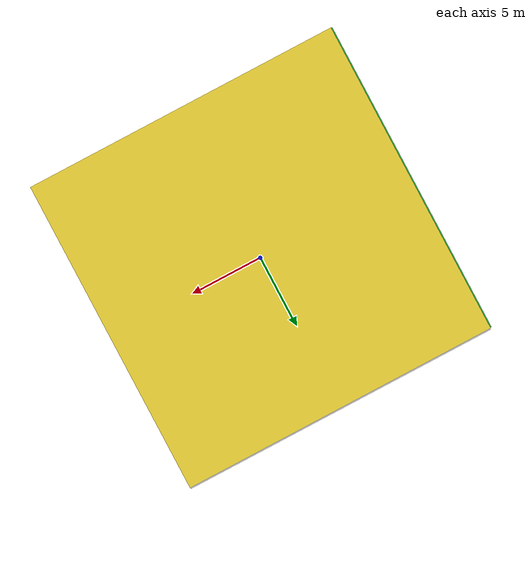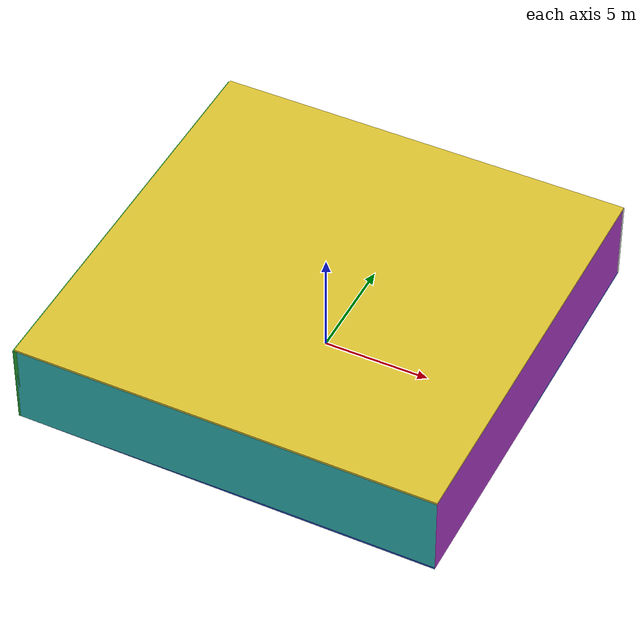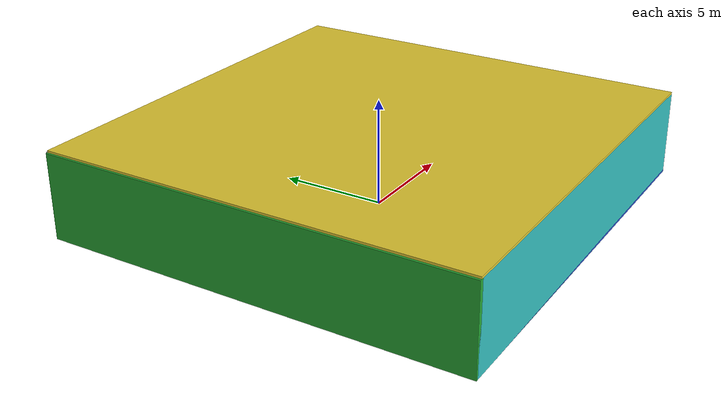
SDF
<sdf version="1.4">
 <world name="default">
  <physics type="ode">
   <max_step_size>0.001</max_step_size>
   <real_time_factor>1</real_time_factor>
   <real_time_update_rate>1000</real_time_update_rate>
   <gravity>0 0 -9.8</gravity>
  </physics>
  <scene><ambient>0.4 0.4 0.4 1</ambient><background>0.7 0.7 0.7 1</background><shadows>1</shadows></scene>
  <model name="Surrounding">
   <static>1</static>
   <link name="Ceiling">
    <collision name="Ceiling_Collision"><geometry><box><size>20 20 0.1</size></box></geometry></collision>
    <visual name="Ceiling_Visual">
     <geometry><box><size>20 20 0.1</size></box></geometry>
     <material>
      <script><uri>file://media/materials/scripts/gazebo.material</uri><name>Gazebo/ZincYellow</name></script>
     </material>
    </visual>
    <pose>0 0 4.05 0 0 0</pose>
   </link>
   <link name="Wall_South">
    <collision name="Wall_South_Collision">
     <geometry><box><size>20 0 4</size></box></geometry>
     <pose>0 0 2 0 -0 0</pose>
    </collision>
    <visual name="Wall_South_Visual">
     <pose>0 0 2 0 -0 0</pose>
     <geometry><box><size>20 0 4</size></box></geometry>
     <material>
      <script>
       <uri>file://media/materials/scripts/gazebo.material</uri>
       <name>Gazebo/TurquoiseGlowOutline</name>
      </script>
     </material>
    </visual>
    <velocity_decay><linear>0</linear><angular>0</angular></velocity_decay>
    <pose>0 -10 0 0 -0 0</pose>
   </link>
   <link name="Wall_East">
    <collision name="Wall_21_Collision">
     <geometry><box><size>20 0 4</size></box></geometry>
     <pose>0 0 2 0 -0 0</pose>
    </collision>
    <visual name="Wall_21_Visual">
     <pose>0 0 2 0 -0 0</pose>
     <geometry><box><size>20 0 4</size></box></geometry>
     <material>
      <script><uri>file://media/materials/scripts/gazebo.material</uri><name>Gazebo/PurpleGlow</name></script>
     </material>
    </visual>
    <velocity_decay><linear>0</linear><angular>0</angular></velocity_decay>
    <pose>10 0 0 0 -0 1.5708</pose>
   </link>
   <link name="Wall_North">
    <collision name="Wall_22_Collision">
     <geometry><box><size>20 0.2 4</size></box></geometry>
     <pose>0 0 2 0 -0 0</pose>
    </collision>
    <visual name="Wall_22_Visual">
     <pose>0 0 2 0 -0 0</pose>
     <geometry><box><size>20 0.2 4</size></box></geometry>
     <material>
      <script><uri>file://media/materials/scripts/gazebo.material</uri><name>Gazebo/LightOn</name></script>
     </material>
    </visual>
    <velocity_decay><linear>0</linear><angular>0</angular></velocity_decay>
    <pose>0 10 0 0 -0 0</pose>
   </link>
   <link name="Wall_West">
    <collision name="Wall_23_Collision">
     <geometry><box><size>20 0.2 4</size></box></geometry>
     <pose>0 0 2 0 -0 0</pose>
    </collision>
    <visual name="Wall_23_Visual">
     <pose>0 0 2 0 -0 0</pose>
     <geometry><box><size>20 0.2 4</size></box></geometry>
     <material>
      <script><uri>file://media/materials/scripts/gazebo.material</uri><name>Gazebo/GreenGlow</name></script>
     </material>
    </visual>
    <velocity_decay><linear>0</linear><angular>0</angular></velocity_decay>
    <pose>-10 0 0 0 0 -1.5708</pose>
   </link>
   <link name="Ground_link">
    <collision name="collision">
     <pose>0 0 .05 0 -0 0</pose>
     <geometry><box><size>20 20 0.1</size></box></geometry>
    </collision>
    <visual name="visual">
     <pose>0 0 .05 0 -0 0</pose>
     <geometry><box><size>20 20 0.1</size></box></geometry>
     <material>
      <script><uri>file://media/materials/scripts/gazebo.material</uri><name>Gazebo/BlueLaser</name></script>
     </material>
    </visual>
   </link>
   <static>1</static>
  </model>
  <spherical_coordinates>
   <surface_model>EARTH_WGS84</surface_model>
   <latitude_deg>0</latitude_deg>
   <longitude_deg>0</longitude_deg>
   <elevation>0</elevation>
   <heading_deg>0</heading_deg>
  </spherical_coordinates>
  <light name="lightball_0" type="diffuse">
   <diffuse>0.8 0.8 0.8 1</diffuse>
   <specular>0.2 0.2 0.2 1</specular>
   <attenuation>
    <range>100</range>
    <constant>0.7</constant>
    <linear>0.01</linear>
    <quadratic>0.001</quadratic>
   </attenuation>
   <direction>-0.5 0.1 -0.9</direction>
   <pose>-1.27258756836 -4.88870947942 0.959706992086 0 0 0</pose>
  </light>
  <light name="lightball_1" type="diffuse">
   <diffuse>0.8 0.8 0.8 1</diffuse>
   <specular>0.2 0.2 0.2 1</specular>
   <attenuation>
    <range>100</range>
    <constant>0.7</constant>
    <linear>0.01</linear>
    <quadratic>0.001</quadratic>
   </attenuation>
   <direction>-0.5 0.1 -0.9</direction>
   <pose>1.66117478614 5.40590669809 1.92787699663 0 0 0</pose>
  </light>
  <light name="lightball_2" type="diffuse">
   <diffuse>0.8 0.8 0.8 1</diffuse>
   <specular>0.2 0.2 0.2 1</specular>
   <attenuation>
    <range>100</range>
    <constant>0.7</constant>
    <linear>0.01</linear>
    <quadratic>0.001</quadratic>
   </attenuation>
   <direction>-0.5 0.1 -0.9</direction>
   <pose>-4.79415340127 -1.75817674761 0.581007586271 0 0 0</pose>
  </light>
  <light name="lightball_3" type="diffuse">
   <diffuse>0.8 0.8 0.8 1</diffuse>
   <specular>0.2 0.2 0.2 1</specular>
   <attenuation>
    <range>100</range>
    <constant>0.7</constant>
    <linear>0.01</linear>
    <quadratic>0.001</quadratic>
   </attenuation>
   <direction>-0.5 0.1 -0.9</direction>
   <pose>4.25523111054 4.53422506486 3.23026680798 0 0 0</pose>
  </light>
  <light name="lightball_4" type="diffuse">
   <diffuse>0.8 0.8 0.8 1</diffuse>
   <specular>0.2 0.2 0.2 1</specular>
   <attenuation>
    <range>100</range>
    <constant>0.7</constant>
    <linear>0.01</linear>
    <quadratic>0.001</quadratic>
   </attenuation>
   <direction>-0.5 0.1 -0.9</direction>
   <pose>9.03208068285 -5.17975573901 1.07089301807 0 0 0</pose>
  </light>
  <light name="lightball_5" type="diffuse">
   <diffuse>0.8 0.8 0.8 1</diffuse>
   <specular>0.2 0.2 0.2 1</specular>
   <attenuation>
    <range>100</range>
    <constant>0.7</constant>
    <linear>0.01</linear>
    <quadratic>0.001</quadratic>
   </attenuation>
   <direction>-0.5 0.1 -0.9</direction>
   <pose>-2.55144208293 -8.46608771223 2.11564749318 0 0 0</pose>
  </light>
  <light name="lightball_6" type="diffuse">
   <diffuse>0.8 0.8 0.8 1</diffuse>
   <specular>0.2 0.2 0.2 1</specular>
   <attenuation>
    <range>100</range>
    <constant>0.7</constant>
    <linear>0.01</linear>
    <quadratic>0.001</quadratic>
   </attenuation>
   <direction>-0.5 0.1 -0.9</direction>
   <pose>0.878299959174 4.0092774741 2.80255463279 0 0 0</pose>
  </light>
  <light name="lightball_7" type="diffuse">
   <diffuse>0.8 0.8 0.8 1</diffuse>
   <specular>0.2 0.2 0.2 1</specular>
   <attenuation>
    <range>100</range>
    <constant>0.7</constant>
    <linear>0.01</linear>
    <quadratic>0.001</quadratic>
   </attenuation>
   <direction>-0.5 0.1 -0.9</direction>
   <pose>-4.04210044713 -3.77707808529 2.67134151783 0 0 0</pose>
  </light>
  <light name="lightball_8" type="diffuse">
   <diffuse>0.8 0.8 0.8 1</diffuse>
   <specular>0.2 0.2 0.2 1</specular>
   <attenuation>
    <range>100</range>
    <constant>0.7</constant>
    <linear>0.01</linear>
    <quadratic>0.001</quadratic>
   </attenuation>
   <direction>-0.5 0.1 -0.9</direction>
   <pose>0.531169174702 -5.35103474709 3.18587286852 0 0 0</pose>
  </light>
  <light name="lightball_9" type="diffuse">
   <diffuse>0.8 0.8 0.8 1</diffuse>
   <specular>0.2 0.2 0.2 1</specular>
   <attenuation>
    <range>100</range>
    <constant>0.7</constant>
    <linear>0.01</linear>
    <quadratic>0.001</quadratic>
   </attenuation>
   <direction>-0.5 0.1 -0.9</direction>
   <pose>9.22012785007 5.33984541436 2.0327163341 0 0 0</pose>
  </light>
  <light name="lightball_10" type="diffuse">
   <diffuse>0.8 0.8 0.8 1</diffuse>
   <specular>0.2 0.2 0.2 1</specular>
   <attenuation>
    <range>100</range>
    <constant>0.7</constant>
    <linear>0.01</linear>
    <quadratic>0.001</quadratic>
   </attenuation>
   <direction>-0.5 0.1 -0.9</direction>
   <pose>-5.50377437225 5.65165325309 2.93859440327 0 0 0</pose>
  </light>
  <light name="lightball_11" type="diffuse">
   <diffuse>0.8 0.8 0.8 1</diffuse>
   <specular>0.2 0.2 0.2 1</specular>
   <attenuation>
    <range>100</range>
    <constant>0.7</constant>
    <linear>0.01</linear>
    <quadratic>0.001</quadratic>
   </attenuation>
   <direction>-0.5 0.1 -0.9</direction>
   <pose>8.36199304184 7.21554434098 2.73064332592 0 0 0</pose>
  </light>
  <light name="lightball_12" type="diffuse">
   <diffuse>0.8 0.8 0.8 1</diffuse>
   <specular>0.2 0.2 0.2 1</specular>
   <attenuation>
    <range>100</range>
    <constant>0.7</constant>
    <linear>0.01</linear>
    <quadratic>0.001</quadratic>
   </attenuation>
   <direction>-0.5 0.1 -0.9</direction>
   <pose>-9.58651035931 1.65749079606 2.71411998684 0 0 0</pose>
  </light>
  <light name="lightball_13" type="diffuse">
   <diffuse>0.8 0.8 0.8 1</diffuse>
   <specular>0.2 0.2 0.2 1</specular>
   <attenuation>
    <range>100</range>
    <constant>0.7</constant>
    <linear>0.01</linear>
    <quadratic>0.001</quadratic>
   </attenuation>
   <direction>-0.5 0.1 -0.9</direction>
   <pose>3.5076359164 8.07043389031 3.24541319108 0 0 0</pose>
  </light>
  <include><uri>model://cabinet</uri><pose>-4.19155183678 -4.38344392123 0 0 0 0.790163044862</pose></include>
  <include>
   <uri>model://construction_cone</uri>
   <pose>-4.95584973016 4.94490034747 0 0 0 0.930743807013</pose>
  </include>
  <include>
   <uri>model://construction_cone</uri>
   <pose>-4.76186002329 7.47358146932 0 0 0 2.14608604311</pose>
  </include>
  <include><uri>model://cabinet</uri><pose>-1.85069573432 -4.47894521145 0 0 0 1.40208375727</pose></include>
  <include><uri>model://table</uri><pose>-0.866649489882 4.7913985393 0 0 0 2.29789346326</pose></include>
  <include><uri>model://table</uri><pose>1.38059656656 7.93071444423 0 0 0 3.00972191885</pose></include>
  <include>
   <uri>model://construction_cone</uri>
   <pose>4.81460303557 -4.30116693447 0 0 0 2.72290418684</pose>
  </include>
  <include>
   <uri>model://robocup_3Dsim_goal</uri>
   <pose>6.95791483364 8.14524196085 0 0 0 2.11262834878</pose>
  </include>
 </world>
</sdf>

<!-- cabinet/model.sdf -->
<sdf version="1.5">
  <model name="cabinet">
    <static>true</static>
    <link name="cabinet_bottom_plate">
      <inertial>
        <pose>0 0 -1 0 0 0</pose>
        <inertia>
          <ixx>2.050000</ixx>
          <ixy>0</ixy>
          <ixz>0</ixz>
          <iyy>2.050000</iyy>
          <iyz>0</iyz>
          <izz>2.050000</izz>
        </inertia>
        <mass>25.000000</mass>
      </inertial>
      <collision name="cabinet_bottom_plate_geom">
        <pose>0 0 0.010000 0 0 0</pose>
        <geometry>
          <box>
            <size>0.450000 0.450000 0.020000</size>
          </box>
        </geometry>
      </collision>
      <visual name="cabinet_bottom_plate_geom_visual">
        <pose>0 0 0.010000 0 0 0</pose>
        <geometry>
          <box>
            <size>0.450000 0.450000 0.020000</size>
          </box>
        </geometry>
        <material>
          <script>
            <uri>model://media/materials/scripts/gazebo.material</uri>
            <name>Gazebo/Wood</name>
          </script>
        </material>
      </visual>
      <collision name="cabinet_bottom_plate_geom_cabinet_back_plate">
        <pose>0.235000 0 0.510000 0 0 0</pose>
        <geometry>
          <box>
            <size>0.020000 0.450000 1.020000</size>
          </box>
        </geometry>
      </collision>
      <visual name="cabinet_bottom_plate_geom_cabinet_back_plate_visual">
        <pose>0.235000 0 0.510000 0 0 0</pose>
        <geometry>
          <box>
            <size>0.020000 0.450000 1.020000</size>
          </box>
        </geometry>
        <material>
          <script>
            <uri>model://media/materials/scripts/gazebo.material</uri>
            <name>Gazebo/Wood</name>
          </script>
        </material>
      </visual>
      <collision name="cabinet_bottom_plate_geom_cabinet_left_plate">
        <pose>0 0.235000 0.510000 0 0 0</pose>
        <geometry>
          <box>
            <size>0.450000 0.020000 1.020000</size>
          </box>
        </geometry>
      </collision>
      <visual name="cabinet_bottom_plate_geom_cabinet_left_plate_visual">
        <pose>0 0.235000 0.510000 0 0 0</pose>
        <geometry>
          <box>
            <size>0.450000 0.020000 1.020000</size>
          </box>
        </geometry>
        <material>
          <script>
            <uri>model://media/materials/scripts/gazebo.material</uri>
            <name>Gazebo/Wood</name>
          </script>
        </material>
      </visual>
      <collision name="cabinet_bottom_plate_geom_cabinet_middle_plate">
        <pose>0 0 0.510000 0 0 0</pose>
        <geometry>
          <box>
            <size>0.450000 0.450000 0.020000</size>
          </box>
        </geometry>
      </collision>
      <visual name="cabinet_bottom_plate_geom_cabinet_middle_plate_visual">
        <pose>0 0 0.510000 0 0 0</pose>
        <geometry>
          <box>
            <size>0.450000 0.450000 0.020000</size>
          </box>
        </geometry>
        <material>
          <script>
            <uri>model://media/materials/scripts/gazebo.material</uri>
            <name>Gazebo/Wood</name>
          </script>
        </material>
      </visual>
      <collision name="cabinet_bottom_plate_geom_cabinet_right_plate">
        <pose>0 -0.235000 0.510000 0 0 0</pose>
        <geometry>
          <box>
            <size>0.450000 0.020000 1.020000</size>
          </box>
        </geometry>
      </collision>
      <visual name="cabinet_bottom_plate_geom_cabinet_right_plate_visual">
        <pose>0 -0.235000 0.510000 0 0 0</pose>
        <geometry>
          <box>
            <size>0.450000 0.020000 1.020000</size>
          </box>
        </geometry>
        <material>
          <script>
            <uri>model://media/materials/scripts/gazebo.material</uri>
            <name>Gazebo/Wood</name>
          </script>
        </material>
      </visual>
      <collision name="cabinet_bottom_plate_geom_cabinet_top_plate">
        <pose>0 0 1.010000 0 0 0</pose>
        <geometry>
          <box>
            <size>0.450000 0.450000 0.020000</size>
          </box>
        </geometry>
      </collision>
      <visual name="cabinet_bottom_plate_geom_cabinet_top_plate_visual">
        <pose>0 0 1.010000 0 0 0</pose>
        <geometry>
          <box>
            <size>0.450000 0.450000 0.020000</size>
          </box>
        </geometry>
        <material>
          <script>
            <uri>model://media/materials/scripts/gazebo.material</uri>
            <name>Gazebo/Wood</name>
          </script>
        </material>
      </visual>
    </link>
  </model>
</sdf>

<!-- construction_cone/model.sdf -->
<sdf version="1.5">
  <model name="Construction Cone">
    <link name="link">
      <collision name="collision">
        <geometry>
          <mesh>
            <scale>10 10 10</scale>
            <uri>file://isr-testbed/construction_cone/meshes/construction_cone.dae</uri>
          </mesh>
        </geometry>
      </collision>
      <visual name="visual">
        <geometry>
          <mesh>
            <scale>10 10 10</scale>
            <uri>file://isr-testbed/construction_cone/meshes/construction_cone.dae</uri>
          </mesh>
        </geometry>
      </visual>
    </link>
  </model>
</sdf>

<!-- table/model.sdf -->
<sdf version="1.5">
  <model name="table">
    <static>true</static>
    <link name="link">
      <collision name="surface">
        <pose>0 0 1.0 0 0 0</pose>
        <geometry>
          <box>
            <size>1.5 0.8 0.03</size>
          </box>
        </geometry>
        <surface>
          <friction>
            <ode>
              <mu>0.6</mu>
              <mu2>0.6</mu2>
            </ode>
          </friction>
        </surface>
      </collision>
      <visual name="visual1">
        <pose>0 0 1.0 0 0 0</pose>
        <geometry>
          <box>
            <size>1.5 0.8 0.03</size>
          </box>
        </geometry>
        <material>
          <script>
            <uri>model://media/materials/scripts/gazebo.material</uri>
            <name>Gazebo/Wood</name>
          </script>
        </material>
      </visual>
      <collision name="front_left_leg">
        <pose>0.68 0.38 0.5 0 0 0</pose>
        <geometry>
          <cylinder>
            <radius>0.02</radius>
            <length>1.0</length>
          </cylinder>
        </geometry>
      </collision>
      <visual name="front_left_leg">
        <pose>0.68 0.38 0.5 0 0 0</pose>
        <geometry>
          <cylinder>
            <radius>0.02</radius>
            <length>1.0</length>
          </cylinder>
        </geometry>
        <material>
          <script>
            <uri>model://media/materials/scripts/gazebo.material</uri>
            <name>Gazebo/Grey</name>
          </script>
        </material>
      </visual>
      <collision name="front_right_leg">
        <pose>0.68 -0.38 0.5 0 0 0</pose>
        <geometry>
          <cylinder>
            <radius>0.02</radius>
            <length>1.0</length>
          </cylinder>
        </geometry>
      </collision>
      <visual name="front_right_leg">
        <pose>0.68 -0.38 0.5 0 0 0</pose>
        <geometry>
          <cylinder>
            <radius>0.02</radius>
            <length>1.0</length>
          </cylinder>
        </geometry>
        <material>
          <script>
            <uri>model://media/materials/scripts/gazebo.material</uri>
            <name>Gazebo/Grey</name>
          </script>
        </material>
      </visual>
      <collision name="back_right_leg">
        <pose>-0.68 -0.38 0.5 0 0 0</pose>
        <geometry>
          <cylinder>
            <radius>0.02</radius>
            <length>1.0</length>
          </cylinder>
        </geometry>
      </collision>
      <visual name="back_right_leg">
        <pose>-0.68 -0.38 0.5 0 0 0</pose>
        <geometry>
          <cylinder>
            <radius>0.02</radius>
            <length>1.0</length>
          </cylinder>
        </geometry>
        <material>
          <script>
            <uri>model://media/materials/scripts/gazebo.material</uri>
            <name>Gazebo/Grey</name>
          </script>
        </material>
      </visual>
      <collision name="back_left_leg">
        <pose>-0.68 0.38 0.5 0 0 0</pose>
        <geometry>
          <cylinder>
            <radius>0.02</radius>
            <length>1.0</length>
          </cylinder>
        </geometry>
      </collision>
      <visual name="back_left_leg">
        <pose>-0.68 0.38 0.5 0 0 0</pose>
        <geometry>
          <cylinder>
            <radius>0.02</radius>
            <length>1.0</length>
          </cylinder>
        </geometry>
        <material>
          <script>
            <uri>model://media/materials/scripts/gazebo.material</uri>
            <name>Gazebo/Grey</name>
          </script>
        </material>
      </visual>
    </link>
  </model>
</sdf>

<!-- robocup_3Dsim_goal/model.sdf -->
<sdf version="1.5">
  <model name="robocup_3d_goal">
    <static>true</static>
    <link name="left_post">
      <pose>0 1.05 0.45 0 0 0</pose>
      <collision name="collision">
        <geometry>
          <cylinder>
            <radius>0.05</radius>
            <length>0.9</length>
          </cylinder>
        </geometry>
      </collision>
      <visual name="visual">
        <geometry>
          <cylinder>
            <radius>0.05</radius>
            <length>0.9</length>
          </cylinder>
        </geometry>
        <material>
          <script>
            <uri>file://media/materials/scripts/gazebo.material</uri>
            <name>Gazebo/ZincYellow</name>
          </script>
        </material>
      </visual>
    </link>
    <link name="left_support_horiz_lower">
      <pose>0.30 1.05 0.01 0 0 0</pose>
      <collision name="collision">
        <geometry>
          <box>
            <size>0.50 0.02 0.02</size>
          </box>
        </geometry>
      </collision>
      <visual name="visual">
        <geometry>
          <box>
            <size>0.50 0.02 0.02</size>
          </box>
        </geometry>
        <material>
          <script>
            <uri>file://media/materials/scripts/gazebo.material</uri>
            <name>Gazebo/White</name>
          </script>
        </material>
      </visual>
    </link>
    <link name="left_support_horiz_upper">
      <pose>0.30 1.05 0.79 0 0 0</pose>
      <collision name="collision">
        <geometry>
          <box>
            <size>0.50 0.02 0.02</size>
          </box>
        </geometry>
      </collision>
      <visual name="visual">
        <geometry>
          <box>
            <size>0.50 0.02 0.02</size>
          </box>
        </geometry>
        <material>
          <script>
            <uri>file://media/materials/scripts/gazebo.material</uri>
            <name>Gazebo/White</name>
          </script>
        </material>
      </visual>
    </link>
    <link name="left_support_vertical">
      <pose>0.56 1.05 0.4 0 1.5708 0</pose>
      <collision name="collision">
        <geometry>
          <box>
            <size>0.80 0.02 0.02</size>
          </box>
        </geometry>
      </collision>
      <visual name="visual">
        <geometry>
          <box>
            <size>0.80 0.02 0.02</size>
          </box>
        </geometry>
        <material>
          <script>
            <uri>file://media/materials/scripts/gazebo.material</uri>
            <name>Gazebo/White</name>
          </script>
        </material>
      </visual>
    </link>
    <link name="right_support_horiz_lower">
      <pose>0.30 -1.05 0.01 0 0 0</pose>
      <collision name="collision">
        <geometry>
          <box>
            <size>0.50 0.02 0.02</size>
          </box>
        </geometry>
      </collision>
      <visual name="visual">
        <geometry>
          <box>
            <size>0.50 0.02 0.02</size>
          </box>
        </geometry>
        <material>
          <script>
            <uri>file://media/materials/scripts/gazebo.material</uri>
            <name>Gazebo/White</name>
          </script>
        </material>
      </visual>
    </link>
    <link name="right_support_horiz_upper">
      <pose>0.30 -1.05 0.79 0 0 0</pose>
      <collision name="collision">
        <geometry>
          <box>
            <size>0.50 0.02 0.02</size>
          </box>
        </geometry>
      </collision>
      <visual name="visual">
        <geometry>
          <box>
            <size>0.50 0.02 0.02</size>
          </box>
        </geometry>
        <material>
          <script>
            <uri>file://media/materials/scripts/gazebo.material</uri>
            <name>Gazebo/White</name>
          </script>
        </material>
      </visual>
    </link>
    <link name="right_support_vertical">
      <pose>0.56 -1.05 0.4 0 1.5708 0</pose>
      <collision name="collision">
        <geometry>
          <box>
            <size>0.80 0.02 0.02</size>
          </box>
        </geometry>
      </collision>
      <visual name="visual">
        <geometry>
          <box>
            <size>0.80 0.02 0.02</size>
          </box>
        </geometry>
        <material>
          <script>
            <uri>file://media/materials/scripts/gazebo.material</uri>
            <name>Gazebo/White</name>
          </script>
        </material>
      </visual>
    </link>
    <link name="center_support_horiz_lower">
      <pose>0.56 0 0.01 0 1.5708 0</pose>
      <collision name="collision">
        <geometry>
          <box>
            <size>0.02 2.08 0.02</size>
          </box>
        </geometry>
      </collision>
      <visual name="visual">
        <geometry>
          <box>
            <size>0.02 2.08 0.02</size>
          </box>
        </geometry>
        <material>
          <script>
            <uri>file://media/materials/scripts/gazebo.material</uri>
            <name>Gazebo/White</name>
          </script>
        </material>
      </visual>
    </link>
    <link name="center_support_horiz_upper">
      <pose>0.56 0 0.79 0 1.5708 0</pose>
      <collision name="collision">
        <geometry>
          <box>
            <size>0.02 2.08 0.02</size>
          </box>
        </geometry>
      </collision>
      <visual name="visual">
        <geometry>
          <box>
            <size>0.02 2.08 0.02</size>
          </box>
        </geometry>
        <material>
          <script>
            <uri>file://media/materials/scripts/gazebo.material</uri>
            <name>Gazebo/White</name>
          </script>
        </material>
      </visual>
    </link>
    <link name="right_post">
      <pose>0 -1.05 0.45 0 0 0</pose>
      <collision name="collision">
        <geometry>
          <cylinder>
            <radius>0.05</radius>
            <length>0.9</length>
          </cylinder>
        </geometry>
      </collision>
      <visual name="visual">
        <geometry>
          <cylinder>
            <radius>0.05</radius>
            <length>0.9</length>
          </cylinder>
        </geometry>
        <material>
          <script>
            <uri>file://media/materials/scripts/gazebo.material</uri>
            <name>Gazebo/ZincYellow</name>
          </script>
        </material>
      </visual>
    </link>
    <link name="crossbar">
      <pose>0 0 0.85 1.57 1.57 0</pose>
      <collision name="collision">
        <geometry>
          <cylinder>
            <radius>0.05</radius>
            <length>2.0</length>
          </cylinder>
        </geometry>
      </collision>
      <visual name="visual">
        <geometry>
          <cylinder>
            <radius>0.05</radius>
            <length>2.0</length>
          </cylinder>
        </geometry>
        <material>
          <script>
            <uri>file://media/materials/scripts/gazebo.material</uri>
            <name>Gazebo/ZincYellow</name>
          </script>
        </material>
      </visual>
    </link>
    <link name="center_net">
      <pose>0.56 0 0.40 0 0 0</pose>
      <collision name="collision">
        <geometry>
          <box>
            <size>0.01 2.1 0.80</size>
          </box>
        </geometry>
      </collision>
      <visual name="visual">
        <geometry>
          <box>
            <size>0.01 2.1 0.80</size>
          </box>
        </geometry>
        <material>
          <script>
            <uri>model://../model_source/models/robocup09_spl_field/materials/scripts/</uri>
            <uri>model://../model_source/models/robocup09_spl_field/materials/textures/</uri>
            <name>RoboCup/Net</name>
          </script>
        </material>
      </visual>
    </link>
    <link name="left_net">
      <pose>0.30 1.05 0.40 0 0 0</pose>
      <collision name="collision">
        <geometry>
          <box>
            <size>0.50 0.01 0.76</size>
          </box>
        </geometry>
      </collision>
      <visual name="visual">
        <geometry>
          <box>
            <size>0.50 0.01 0.76</size>
          </box>
        </geometry>
        <material>
          <script>
            <uri>model://../model_source/models/robocup09_spl_field/materials/scripts/</uri>
            <uri>model://../model_source/models/robocup09_spl_field/materials/textures/</uri>
            <name>RoboCup/Net</name>
          </script>
        </material>
      </visual>
    </link>
    <link name="right_net">
      <pose>0.30 -1.05 0.40 0 0 0</pose>
      <collision name="collision">
        <geometry>
          <box>
            <size>0.50 0.01 0.76</size>
          </box>
        </geometry>
      </collision>
      <visual name="visual">
        <geometry>
          <box>
            <size>0.50 0.01 0.76</size>
          </box>
        </geometry>
        <material>
          <script>
            <uri>model://../model_source/models/robocup09_spl_field/materials/scripts/</uri>
            <uri>model://../model_source/models/robocup09_spl_field/materials/textures/</uri>
            <name>RoboCup/Net</name>
          </script>
        </material>
      </visual>
    </link>
  </model>
</sdf>
